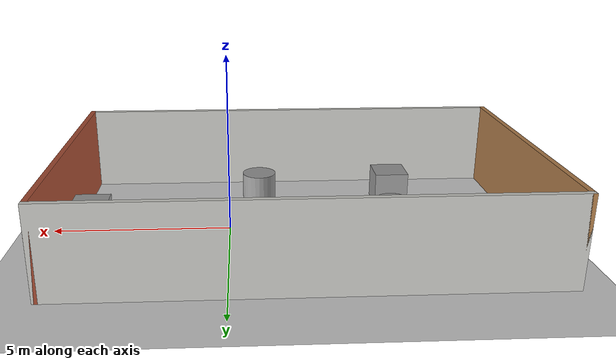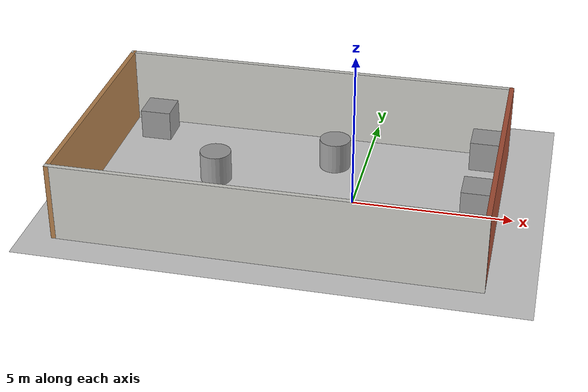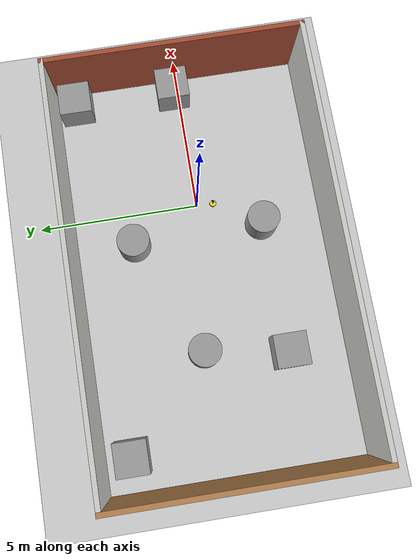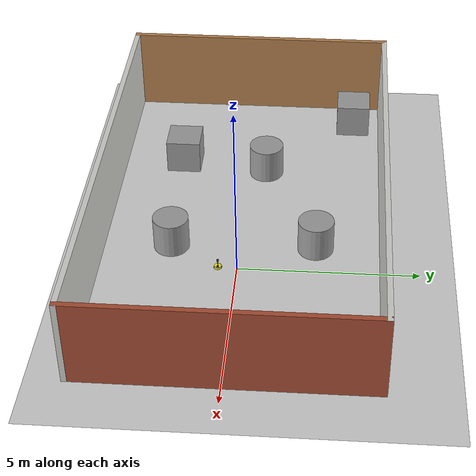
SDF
<sdf version="1.7">
 <world name="default">
  <light name="sun" type="directional">
   <pose>0 0 10 0 -0 0</pose>
   <diffuse>0.8 0.8 0.8 1</diffuse>
   <specular>0.2 0.2 0.2 1</specular>
   <attenuation>
    <range>1000</range>
    <constant>0.9</constant>
    <linear>0.01</linear>
    <quadratic>0.001</quadratic>
   </attenuation>
   <direction>-0.5 0.1 -0.9</direction>
   <spot><inner_angle>0</inner_angle><outer_angle>0</outer_angle><falloff>0</falloff></spot>
  </light>
  <model name="ground_plane">
   <static>1</static>
   <link name="link">
    <collision name="collision">
     <geometry><plane><normal>0 0 1</normal><size>100 100</size></plane></geometry>
     <surface>
      <contact><collide_bitmask>65535</collide_bitmask></contact>
      <friction><ode><mu>100</mu><mu2>50</mu2></ode></friction>
     </surface>
    </collision>
    <visual name="visual">
     <cast_shadows>0</cast_shadows>
     <geometry><plane><normal>0 0 1</normal><size>100 100</size></plane></geometry>
     <material>
      <script><uri>file://media/materials/scripts/gazebo.material</uri><name>Gazebo/Grey</name></script>
     </material>
    </visual>
   </link>
  </model>
  <gravity>0 0 -9.8</gravity>
  <magnetic_field>6e-06 2.3e-05 -4.2e-05</magnetic_field>
  <atmosphere type="adiabatic"/>
  <physics type="ode">
   <max_step_size>0.001</max_step_size>
   <real_time_factor>1</real_time_factor>
   <real_time_update_rate>1000</real_time_update_rate>
  </physics>
  <scene><ambient>0.4 0.4 0.4 1</ambient><background>0.7 0.7 0.7 1</background><shadows>1</shadows></scene>
  <spherical_coordinates>
   <surface_model>EARTH_WGS84</surface_model>
   <latitude_deg>0</latitude_deg>
   <longitude_deg>0</longitude_deg>
   <elevation>0</elevation>
   <heading_deg>0</heading_deg>
  </spherical_coordinates>
  <model name="box_house">
   <pose>-1.97643 0.05996 0 0 -0 0</pose>
   <link name="Wall_1">
    <collision name="Wall_1_Collision">
     <geometry><box><size>13 0.15 2.5</size></box></geometry>
     <pose>0 0 1.25 0 -0 0</pose>
    </collision>
    <visual name="Wall_1_Visual">
     <pose>0 0 1.25 0 -0 0</pose>
     <geometry><box><size>13 0.15 2.5</size></box></geometry>
     <material>
      <script><uri>file://media/materials/scripts/gazebo.material</uri><name>Gazebo/CeilingTiled</name></script>
      <ambient>1 1 1 1</ambient>
     </material>
     <meta><layer>0</layer></meta>
    </visual>
    <pose>0 3.925 0 0 -0 0</pose>
   </link>
   <link name="Wall_2">
    <collision name="Wall_2_Collision">
     <geometry><box><size>8 0.15 2.5</size></box></geometry>
     <pose>0 0 1.25 0 -0 0</pose>
    </collision>
    <visual name="Wall_2_Visual">
     <pose>0 0 1.25 0 -0 0</pose>
     <geometry><box><size>8 0.15 2.5</size></box></geometry>
     <material>
      <script><uri>file://media/materials/scripts/gazebo.material</uri><name>Gazebo/Bricks</name></script>
      <ambient>1 1 1 1</ambient>
     </material>
     <meta><layer>0</layer></meta>
    </visual>
    <pose>6.425 -0 0 0 -0 -1.5708</pose>
   </link>
   <link name="Wall_3">
    <collision name="Wall_3_Collision">
     <geometry><box><size>13 0.15 2.5</size></box></geometry>
     <pose>0 0 1.25 0 -0 0</pose>
    </collision>
    <visual name="Wall_3_Visual">
     <pose>0 0 1.25 0 -0 0</pose>
     <geometry><box><size>13 0.15 2.5</size></box></geometry>
     <material>
      <script><uri>file://media/materials/scripts/gazebo.material</uri><name>Gazebo/CeilingTiled</name></script>
      <ambient>1 1 1 1</ambient>
     </material>
     <meta><layer>0</layer></meta>
    </visual>
    <pose>0 -3.925 0 0 -0 3.14159</pose>
   </link>
   <link name="Wall_4">
    <collision name="Wall_4_Collision">
     <geometry><box><size>8 0.15 2.5</size></box></geometry>
     <pose>0 0 1.25 0 -0 0</pose>
    </collision>
    <visual name="Wall_4_Visual">
     <pose>0 0 1.25 0 -0 0</pose>
     <geometry><box><size>8 0.15 2.5</size></box></geometry>
     <material>
      <script><uri>file://media/materials/scripts/gazebo.material</uri><name>Gazebo/Wood</name></script>
      <ambient>1 1 1 1</ambient>
     </material>
     <meta><layer>0</layer></meta>
    </visual>
    <pose>-6.425 -0 0 0 -0 1.5708</pose>
   </link>
   <static>1</static>
  </model>
  <model name="unit_box">
   <pose>-7.27142 3.09748 0.499995 -1e-05 0 0</pose>
   <link name="link">
    <inertial>
     <mass>1</mass>
     <inertia>
      <ixx>0.166667</ixx>
      <ixy>0</ixy>
      <ixz>0</ixz>
      <iyy>0.166667</iyy>
      <iyz>0</iyz>
      <izz>0.166667</izz>
     </inertia>
    </inertial>
    <collision name="collision"><geometry><box><size>1 1 1</size></box></geometry></collision>
    <visual name="visual">
     <geometry><box><size>1 1 1</size></box></geometry>
     <material>
      <script><name>Gazebo/Grey</name><uri>file://media/materials/scripts/gazebo.material</uri></script>
     </material>
    </visual>
   </link>
  </model>
  <model name="unit_cylinder">
   <pose>-4.57746 0.509887 0.499992 -3e-06 2e-06 0</pose>
   <link name="link">
    <inertial>
     <mass>1</mass>
     <inertia><ixx>0.145833</ixx><ixy>0</ixy><ixz>0</ixz><iyy>0.145833</iyy><iyz>0</iyz><izz>0.125</izz></inertia>
    </inertial>
    <collision name="collision">
     <geometry><cylinder><radius>0.5</radius><length>1</length></cylinder></geometry>
    </collision>
    <visual name="visual">
     <geometry><cylinder><radius>0.5</radius><length>1</length></cylinder></geometry>
     <material>
      <script><name>Gazebo/Grey</name><uri>file://media/materials/scripts/gazebo.material</uri></script>
     </material>
    </visual>
   </link>
  </model>
  <model name="unit_box_0">
   <pose>-4.96408 -2.00353 0.499995 0 -1e-05 0</pose>
   <link name="link">
    <inertial>
     <mass>1</mass>
     <inertia>
      <ixx>0.166667</ixx>
      <ixy>0</ixy>
      <ixz>0</ixz>
      <iyy>0.166667</iyy>
      <iyz>0</iyz>
      <izz>0.166667</izz>
     </inertia>
    </inertial>
    <collision name="collision"><geometry><box><size>1 1 1</size></box></geometry></collision>
    <visual name="visual">
     <geometry><box><size>1 1 1</size></box></geometry>
     <material>
      <script><name>Gazebo/Grey</name><uri>file://media/materials/scripts/gazebo.material</uri></script>
     </material>
    </visual>
   </link>
  </model>
  <model name="unit_cylinder_0">
   <pose>-0.988145 2.12658 0.499998 3e-06 -3e-06 0</pose>
   <link name="link">
    <inertial>
     <mass>1</mass>
     <inertia><ixx>0.145833</ixx><ixy>0</ixy><ixz>0</ixz><iyy>0.145833</iyy><iyz>0</iyz><izz>0.125</izz></inertia>
    </inertial>
    <collision name="collision">
     <geometry><cylinder><radius>0.5</radius><length>1</length></cylinder></geometry>
    </collision>
    <visual name="visual">
     <geometry><cylinder><radius>0.5</radius><length>1</length></cylinder></geometry>
     <material>
      <script><name>Gazebo/Grey</name><uri>file://media/materials/scripts/gazebo.material</uri></script>
     </material>
    </visual>
   </link>
  </model>
  <model name="unit_cylinder_1">
   <pose>-0.890576 -1.90634 0.499992 -3e-06 3e-06 0</pose>
   <link name="link">
    <inertial>
     <mass>1</mass>
     <inertia><ixx>0.145833</ixx><ixy>0</ixy><ixz>0</ixz><iyy>0.145833</iyy><iyz>0</iyz><izz>0.125</izz></inertia>
    </inertial>
    <collision name="collision">
     <geometry><cylinder><radius>0.5</radius><length>1</length></cylinder></geometry>
    </collision>
    <visual name="visual">
     <geometry><cylinder><radius>0.5</radius><length>1</length></cylinder></geometry>
     <material>
      <script><name>Gazebo/Grey</name><uri>file://media/materials/scripts/gazebo.material</uri></script>
     </material>
    </visual>
   </link>
  </model>
  <model name="mycar">
   <link name="base_footprint">
    <inertial>
     <pose>0.000354 0 0.074646 0 -0 0</pose>
     <mass>2.26</mass>
     <inertia>
      <ixx>0.0137503</ixx>
      <ixy>0</ixy>
      <ixz>-3.62832e-05</ixz>
      <iyy>0.013814</iyy>
      <iyz>0</iyz>
      <izz>0.0101404</izz>
     </inertia>
    </inertial>
    <collision name="base_footprint_fixed_joint_lump__base_link_collision">
     <pose>0 0 0.055 0 -0 0</pose>
     <geometry><cylinder><length>0.08</length><radius>0.1</radius></cylinder></geometry>
    </collision>
    <collision name="base_footprint_fixed_joint_lump__camera_collision_1">
     <pose>0.08 0 0.12 0 -0 0</pose>
     <geometry><box><size>0.02 0.05 0.05</size></box></geometry>
    </collision>
    <collision name="base_footprint_fixed_joint_lump__support_collision_2">
     <pose>0 0 0.17 0 -0 0</pose>
     <geometry><cylinder><length>0.15</length><radius>0.01</radius></cylinder></geometry>
    </collision>
    <collision name="base_footprint_fixed_joint_lump__laser_collision_3">
     <pose>0 0 0.27 0 -0 0</pose>
     <geometry><cylinder><length>0.05</length><radius>0.03</radius></cylinder></geometry>
    </collision>
    <visual name="base_footprint_visual"><geometry><sphere><radius>0.001</radius></sphere></geometry></visual>
    <visual name="base_footprint_fixed_joint_lump__base_link_visual_1">
     <pose>0 0 0.055 0 -0 0</pose>
     <geometry><cylinder><length>0.08</length><radius>0.1</radius></cylinder></geometry>
     <material>
      <script><name>Gazebo/Yellow</name><uri>file://media/materials/scripts/gazebo.material</uri></script>
     </material>
    </visual>
    <visual name="base_footprint_fixed_joint_lump__camera_visual_2">
     <pose>0.08 0 0.12 0 -0 0</pose>
     <geometry><box><size>0.02 0.05 0.05</size></box></geometry>
     <material>
      <script><name>Gazebo/Blue</name><uri>file://media/materials/scripts/gazebo.material</uri></script>
     </material>
    </visual>
    <visual name="base_footprint_fixed_joint_lump__support_visual_3">
     <pose>0 0 0.17 0 -0 0</pose>
     <geometry><cylinder><length>0.15</length><radius>0.01</radius></cylinder></geometry>
     <material>
      <script><name>Gazebo/Gray</name><uri>file://media/materials/scripts/gazebo.material</uri></script>
     </material>
    </visual>
    <visual name="base_footprint_fixed_joint_lump__laser_visual_4">
     <pose>0 0 0.27 0 -0 0</pose>
     <geometry><cylinder><length>0.05</length><radius>0.03</radius></cylinder></geometry>
     <material>
      <script><name>Gazebo/Black</name><uri>file://media/materials/scripts/gazebo.material</uri></script>
     </material>
    </visual>
    <sensor name="camera" type="depth">
     <always_on>1</always_on>
     <update_rate>20</update_rate>
     <camera>
      <horizontal_fov>0.523333</horizontal_fov>
      <image><format>R8G8B8</format><width>640</width><height>480</height></image>
      <clip><near>0.05</near><far>8</far></clip>
     </camera>
     <plugin name="kinect_camera_controller" filename="libgazebo_ros_openni_kinect.so">
      <cameraName>camera</cameraName>
      <alwaysOn>1</alwaysOn>
      <updateRate>10</updateRate>
      <imageTopicName>rgb/image_raw</imageTopicName>
      <depthImageTopicName>depth/image_raw</depthImageTopicName>
      <pointCloudTopicName>depth/points</pointCloudTopicName>
      <cameraInfoTopicName>rgb/camera_info</cameraInfoTopicName>
      <depthImageCameraInfoTopicName>depth/camera_info</depthImageCameraInfoTopicName>
      <frameName>camera_depth</frameName>
      <baseline>0.1</baseline>
      <distortion_k1>0.0</distortion_k1>
      <distortion_k2>0.0</distortion_k2>
      <distortion_k3>0.0</distortion_k3>
      <distortion_t1>0.0</distortion_t1>
      <distortion_t2>0.0</distortion_t2>
      <pointCloudCutoff>0.4</pointCloudCutoff>
      <robotNamespace>/</robotNamespace>
     </plugin>
     <pose>0.08 0 0.12 0 -0 0</pose>
    </sensor>
    <sensor name="rplidar" type="ray">
     <visualize>1</visualize>
     <update_rate>20</update_rate>
     <ray>
      <scan>
       <horizontal>
        <samples>3600</samples>
        <resolution>0.5</resolution>
        <min_angle>-1.57</min_angle>
        <max_angle>1.57</max_angle>
       </horizontal>
       <vertical><samples>1</samples><min_angle>0</min_angle><max_angle>0</max_angle></vertical>
      </scan>
      <range><min>0.1</min><max>30</max><resolution>0.01</resolution></range>
      <noise><type>gaussian</type><mean>0</mean><stddev>0.01</stddev></noise>
     </ray>
     <plugin name="gazebo_rplidar" filename="libgazebo_ros_laser.so">
      <topicName>/scan</topicName>
      <frameName>laser</frameName>
      <robotNamespace>/</robotNamespace>
     </plugin>
     <pose>0 0 0.27 0 -0 0</pose>
    </sensor>
   </link>
   <joint name="back2link" type="revolute">
    <pose relative_to="base_footprint">-0.0925 0 0.0075 0 -0 0</pose>
    <parent>base_footprint</parent>
    <child>back_wheel</child>
    <axis>
     <xyz>0 1 0</xyz>
     <limit><lower>-1e+16</lower><upper>1e+16</upper></limit>
     <dynamics><spring_reference>0</spring_reference><spring_stiffness>0</spring_stiffness></dynamics>
    </axis>
   </joint>
   <link name="back_wheel">
    <pose relative_to="back2link">0 0 0 0 -0 0</pose>
    <inertial>
     <mass>0.01</mass>
     <inertia>
      <ixx>2.25e-07</ixx>
      <ixy>0</ixy>
      <ixz>0</ixz>
      <iyy>2.25e-07</iyy>
      <iyz>0</iyz>
      <izz>2.25e-07</izz>
     </inertia>
    </inertial>
    <collision name="back_wheel_collision">
     <geometry><sphere><radius>0.0075</radius></sphere></geometry>
    </collision>
    <visual name="back_wheel_visual">
     <geometry><sphere><radius>0.0075</radius></sphere></geometry>
     <material>
      <script><name>Gazebo/Red</name><uri>file://media/materials/scripts/gazebo.material</uri></script>
     </material>
    </visual>
   </link>
   <joint name="front2link" type="revolute">
    <pose relative_to="base_footprint">0.0925 0 0.0075 0 -0 0</pose>
    <parent>base_footprint</parent>
    <child>front_wheel</child>
    <axis>
     <xyz>0 1 0</xyz>
     <limit><lower>-1e+16</lower><upper>1e+16</upper></limit>
     <dynamics><spring_reference>0</spring_reference><spring_stiffness>0</spring_stiffness></dynamics>
    </axis>
   </joint>
   <link name="front_wheel">
    <pose relative_to="front2link">0 0 0 0 -0 0</pose>
    <inertial>
     <mass>0.01</mass>
     <inertia>
      <ixx>2.25e-07</ixx>
      <ixy>0</ixy>
      <ixz>0</ixz>
      <iyy>2.25e-07</iyy>
      <iyz>0</iyz>
      <izz>2.25e-07</izz>
     </inertia>
    </inertial>
    <collision name="front_wheel_collision">
     <geometry><sphere><radius>0.0075</radius></sphere></geometry>
    </collision>
    <visual name="front_wheel_visual">
     <geometry><sphere><radius>0.0075</radius></sphere></geometry>
     <material>
      <script><name>Gazebo/Red</name><uri>file://media/materials/scripts/gazebo.material</uri></script>
     </material>
    </visual>
   </link>
   <joint name="left2link" type="revolute">
    <pose relative_to="base_footprint">0 0.1 0.035 0 -0 0</pose>
    <parent>base_footprint</parent>
    <child>left_wheel</child>
    <axis>
     <xyz>0 1 0</xyz>
     <limit><lower>-1e+16</lower><upper>1e+16</upper></limit>
     <dynamics><spring_reference>0</spring_reference><spring_stiffness>0</spring_stiffness></dynamics>
    </axis>
   </joint>
   <link name="left_wheel">
    <pose relative_to="left2link">0 0 0 0 -0 0</pose>
    <inertial>
     <mass>0.05</mass>
     <inertia>
      <ixx>1.625e-05</ixx>
      <ixy>0</ixy>
      <ixz>0</ixz>
      <iyy>1.625e-05</iyy>
      <iyz>0</iyz>
      <izz>3.0625e-05</izz>
     </inertia>
    </inertial>
    <collision name="left_wheel_collision">
     <pose>0 0 0 1.57 -0 0</pose>
     <geometry><cylinder><length>0.015</length><radius>0.035</radius></cylinder></geometry>
    </collision>
    <visual name="left_wheel_visual">
     <pose>0 0 0 1.57 -0 0</pose>
     <geometry><cylinder><length>0.015</length><radius>0.035</radius></cylinder></geometry>
     <material>
      <script><name>Gazebo/Red</name><uri>file://media/materials/scripts/gazebo.material</uri></script>
     </material>
    </visual>
   </link>
   <joint name="right2link" type="revolute">
    <pose relative_to="base_footprint">0 -0.1 0.035 0 -0 0</pose>
    <parent>base_footprint</parent>
    <child>right_wheel</child>
    <axis>
     <xyz>0 1 0</xyz>
     <limit><lower>-1e+16</lower><upper>1e+16</upper></limit>
     <dynamics><spring_reference>0</spring_reference><spring_stiffness>0</spring_stiffness></dynamics>
    </axis>
   </joint>
   <link name="right_wheel">
    <pose relative_to="right2link">0 0 0 0 -0 0</pose>
    <inertial>
     <mass>0.05</mass>
     <inertia>
      <ixx>1.625e-05</ixx>
      <ixy>0</ixy>
      <ixz>0</ixz>
      <iyy>1.625e-05</iyy>
      <iyz>0</iyz>
      <izz>3.0625e-05</izz>
     </inertia>
    </inertial>
    <collision name="right_wheel_collision">
     <pose>0 0 0 1.57 -0 0</pose>
     <geometry><cylinder><length>0.015</length><radius>0.035</radius></cylinder></geometry>
    </collision>
    <visual name="right_wheel_visual">
     <pose>0 0 0 1.57 -0 0</pose>
     <geometry><cylinder><length>0.015</length><radius>0.035</radius></cylinder></geometry>
     <material>
      <script><name>Gazebo/Red</name><uri>file://media/materials/scripts/gazebo.material</uri></script>
     </material>
    </visual>
   </link>
   <static>0</static>
   <plugin name="differential_drive_controller" filename="libgazebo_ros_diff_drive.so">
    <rosDebugLevel>Debug</rosDebugLevel>
    <publishWheelTF>1</publishWheelTF>
    <robotNamespace>/</robotNamespace>
    <publishTf>1</publishTf>
    <publishWheelJointState>1</publishWheelJointState>
    <alwaysOn>1</alwaysOn>
    <updateRate>100.0</updateRate>
    <legacyMode>1</legacyMode>
    <leftJoint>left2link</leftJoint>
    <rightJoint>right2link</rightJoint>
    <wheelSeparation>0.2</wheelSeparation>
    <wheelDiameter>0.07</wheelDiameter>
    <broadcastTF>1</broadcastTF>
    <wheelTorque>30</wheelTorque>
    <wheelAcceleration>1.8</wheelAcceleration>
    <commandTopic>cmd_vel</commandTopic>
    <odometryFrame>odom</odometryFrame>
    <odometryTopic>odom</odometryTopic>
    <robotBaseFrame>base_footprint</robotBaseFrame>
   </plugin>
   <pose>0.003308 -0.519129 3e-06 2.3e-05 3e-06 -0.003284</pose>
  </model>
  <model name="unit_box_3">
   <pose>3.87356 0.188901 0.499995 0 -1e-05 -5e-06</pose>
   <link name="link">
    <inertial>
     <mass>1</mass>
     <inertia>
      <ixx>0.166667</ixx>
      <ixy>0</ixy>
      <ixz>0</ixz>
      <iyy>0.166667</iyy>
      <iyz>0</iyz>
      <izz>0.166667</izz>
     </inertia>
    </inertial>
    <collision name="collision"><geometry><box><size>1 1 1</size></box></geometry></collision>
    <visual name="visual">
     <geometry><box><size>1 1 1</size></box></geometry>
     <material>
      <script><name>Gazebo/Grey</name><uri>file://media/materials/scripts/gazebo.material</uri></script>
     </material>
    </visual>
   </link>
  </model>
  <model name="unit_box_1">
   <pose>3.83312 3.3034 0.5 0 -0 0</pose>
   <link name="link">
    <inertial>
     <mass>1</mass>
     <inertia>
      <ixx>0.166667</ixx>
      <ixy>0</ixy>
      <ixz>0</ixz>
      <iyy>0.166667</iyy>
      <iyz>0</iyz>
      <izz>0.166667</izz>
     </inertia>
    </inertial>
    <collision name="collision"><geometry><box><size>1 1 1</size></box></geometry></collision>
    <visual name="visual">
     <geometry><box><size>1 1 1</size></box></geometry>
     <material>
      <script><name>Gazebo/Grey</name><uri>file://media/materials/scripts/gazebo.material</uri></script>
     </material>
    </visual>
   </link>
  </model>
 </world>
</sdf>
